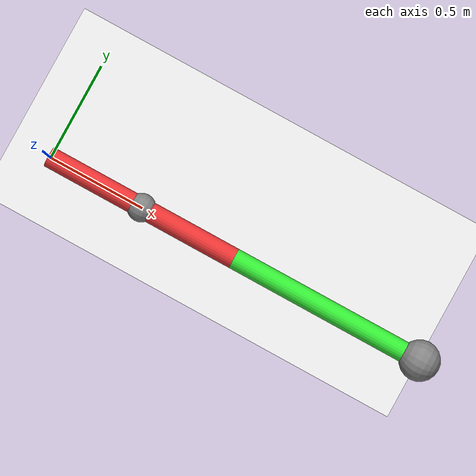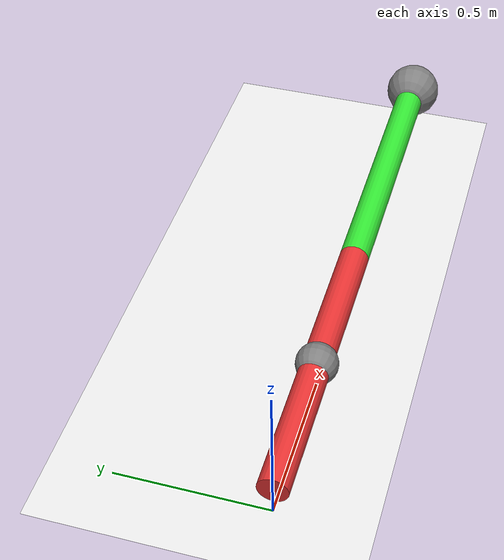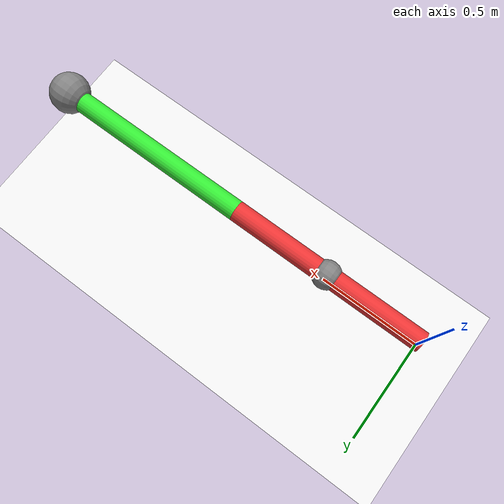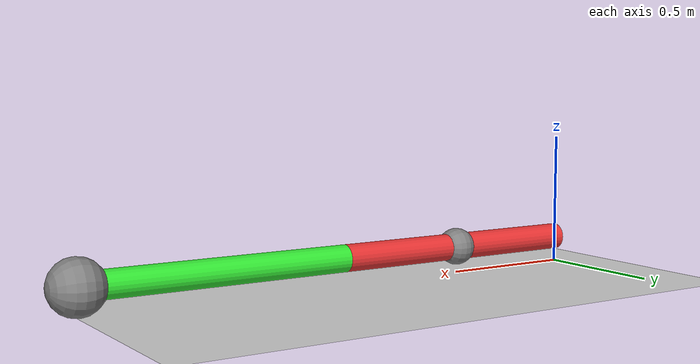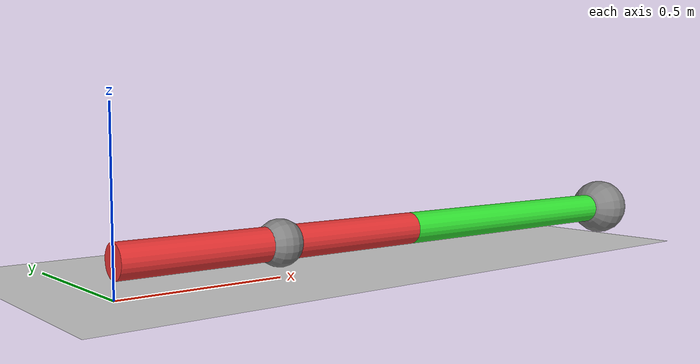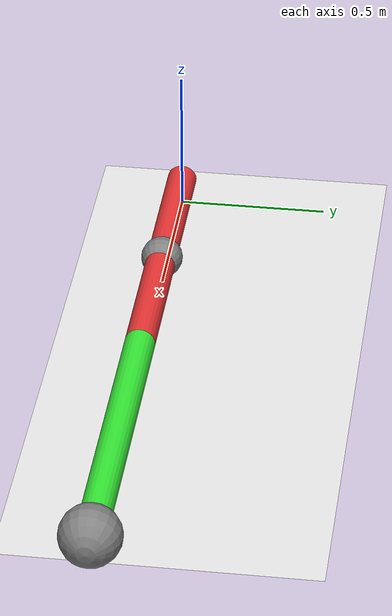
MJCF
<mujoco>
    <option gravity = "0 0 0" timestep = "0.002" />
	<worldbody>

        <light diffuse=".5 .5 .5" pos="0 0 2" dir="0 0 -1"/>

		<geom type="plane" size="2 2 0.1" rgba="0.9 0.9 0.9 1"/>

		<body pos="0.5 0 0.1" euler = "0 90 0">
			<joint type="hinge" name="joint_A" axis = "-1 0 0" pos = "0 0 -0.5"/>
			<geom type="cylinder" size=".05 .5" rgba=".9 .2 .2 1"/>
			<site name="com" size="0.07" pos="0 0 0"/>
            <body pos="0 0 1" euler = "0 0 0">
			    <joint type="hinge" name="joint_B" axis = "-1 0 0" pos = "0 0 -0.5"/>
			    <geom type="cylinder" size=".05 .5" rgba=".2 .9 .2 1"/>
		    	<site name='tip' size = "0.1" pos = "0 0 0.5"/>
			</body>
		</body>

	</worldbody>
	<sensor>
		<framepos objtype="site" objname ="tip"/>
		<framepos objtype="site" objname ="com"/>
	</sensor>
	<actuator>
		<velocity name = "first" joint="joint_A" kv="100" />
		<velocity name = "second" joint="joint_B" kv="100" />
	</actuator>
</mujoco>
